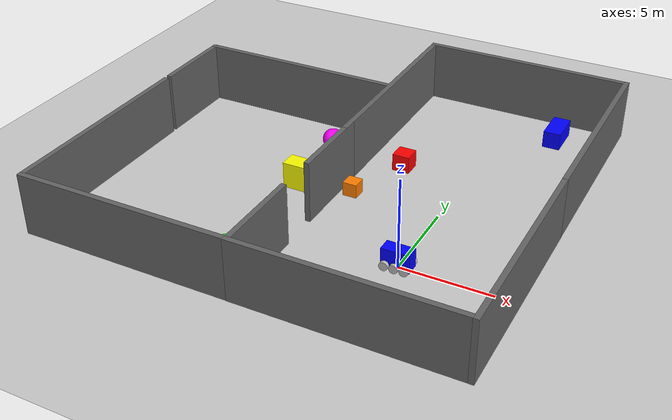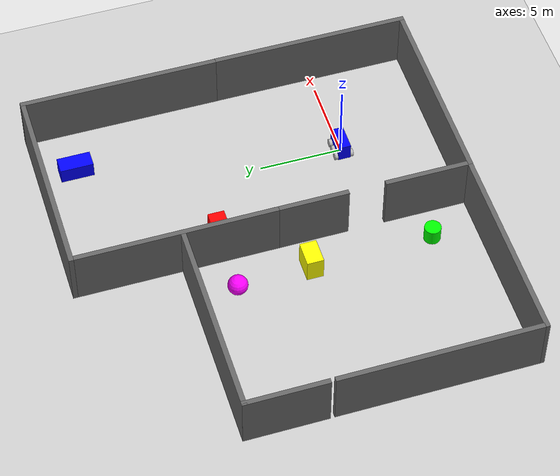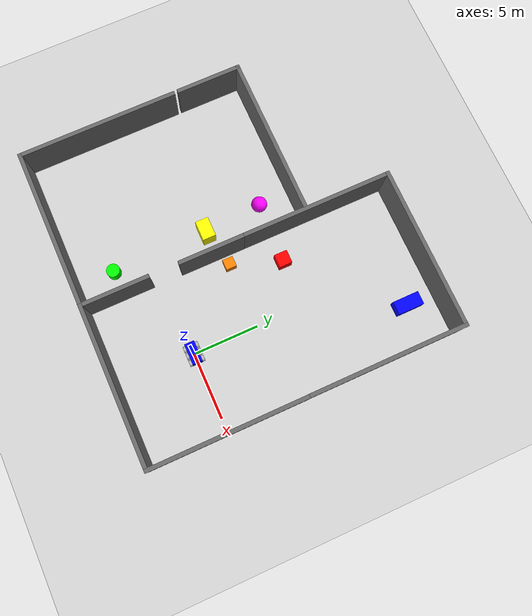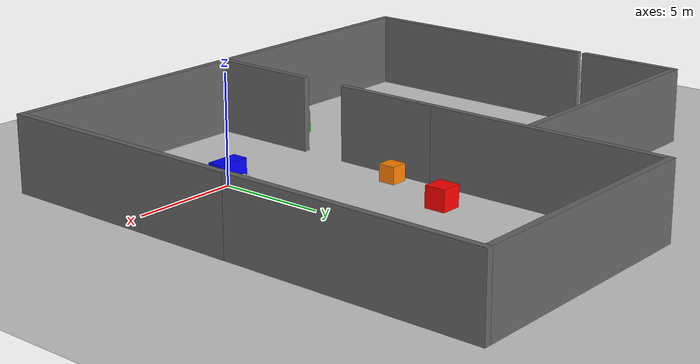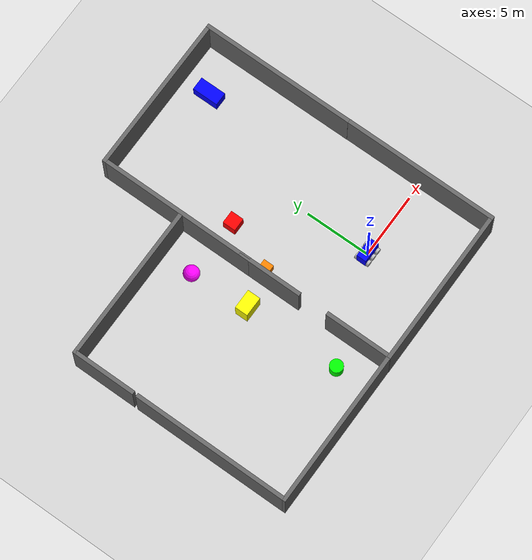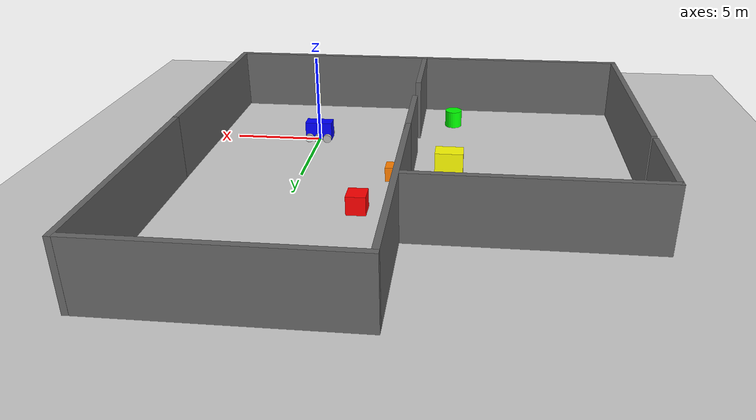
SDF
<sdf version="1.10">
 <world name="room">
  <physics name="1ms" type="ignored">
   <max_step_size>0.001</max_step_size>
   <real_time_factor>1.0</real_time_factor>
  </physics>
  <plugin filename="gz-sim-physics-system" name="gz::sim::systems::Physics"/>
  <plugin filename="gz-sim-user-commands-system" name="gz::sim::systems::UserCommands"/>
  <plugin filename="gz-sim-scene-broadcaster-system" name="gz::sim::systems::SceneBroadcaster"/>
  <plugin filename="gz-sim-imu-system" name="gz::sim::systems::Imu"/>
  <plugin filename="gz-sim-sensors-system" name="gz::sim::systems::Sensors">
   <render_engine>ogre2</render_engine>
  </plugin>
  <light type="directional" name="sun">
   <pose>0 0 10 0 0 0</pose>
   <diffuse>0.8 0.8 0.8 1</diffuse>
   <specular>0.2 0.2 0.2 1</specular>
   <attenuation>
    <range>1000</range>
    <constant>0.9</constant>
    <linear>0.01</linear>
    <quadratic>0.001</quadratic>
   </attenuation>
   <direction>-0.5 0.1 -0.9</direction>
  </light>
  <model name="ground_plane">
   <static>true</static>
   <link name="link">
    <collision name="collision"><geometry><plane><normal>0 0 1</normal></plane></geometry></collision>
    <visual name="visual">
     <geometry><plane><normal>0 0 1</normal><size>100 100</size></plane></geometry>
     <material>
      <ambient>0.8 0.8 0.8 1</ambient>
      <diffuse>0.8 0.8 0.8 1</diffuse>
      <specular>0.8 0.8 0.8 1</specular>
     </material>
    </visual>
   </link>
  </model>
  <model name="FLIP" canonical_link="chassis">
   <link name="chassis">
    <pose relative_to="__model__">0 0 0.625 0 0 0</pose>
    <inertial>
     <mass>450.0</mass>
     <inertia><ixx>62.438</ixx><ixy>0</ixy><ixz>0</ixz><iyy>131.438</iyy><iyz>0</iyz><izz>111.188</izz></inertia>
    </inertial>
    <visual name="visual">
     <geometry><box><size>1.55 0.75 1.05</size></box></geometry>
     <material>
      <ambient>0.0 0.0 1.0 1</ambient>
      <diffuse>0.0 0.0 1.0 1</diffuse>
      <specular>0.0 0.0 1.0 1</specular>
     </material>
    </visual>
    <collision name="collision"><geometry><box><size>1.55 0.75 1.05</size></box></geometry></collision>
   </link>
   <link name="lidar_link">
    <pose relative_to="chassis">0.6 0 0.3 0 0 0</pose>
    <inertial>
     <mass>0.1</mass>
     <inertia>
      <ixx>0.000166</ixx>
      <ixy>0</ixy>
      <ixz>0</ixz>
      <iyy>0.000166</iyy>
      <iyz>0</iyz>
      <izz>0.000166</izz>
     </inertia>
    </inertial>
    <visual name="visual">
     <geometry><cylinder><radius>0.15</radius><length>0.08</length></cylinder></geometry>
     <material><ambient>1 0.0 0.0 1</ambient><diffuse>1.0 0.0 0.0 1</diffuse></material>
    </visual>
    <collision name="collision">
     <geometry><cylinder><radius>0.05</radius><length>0.08</length></cylinder></geometry>
    </collision>
    <sensor name="gpu_lidar" type="gpu_lidar">
     <always_on>1</always_on>
     <update_rate>20</update_rate>
     <lidar>
      <scan>
       <horizontal>
        <samples>320</samples>
        <resolution>1</resolution>
        <min_angle>-3.14159</min_angle>
        <max_angle>3.14159</max_angle>
       </horizontal>
       <vertical>
        <samples>64</samples>
        <resolution>1</resolution>
        <min_angle>-0.610865</min_angle>
        <max_angle>0.610865</max_angle>
       </vertical>
      </scan>
      <range><min>0.08</min><max>10.0</max><resolution>0.01</resolution></range>
     </lidar>
     <visualize>true</visualize>
     <topic>lidar</topic>
    </sensor>
   </link>
   <joint name="lidar_joint" type="fixed"><parent>chassis</parent><child>lidar_link</child></joint>
   <link name="imu_link">
    <pose relative_to="chassis">0 0 0 0 0 0</pose>
    <inertial>
     <mass>0.01</mass>
     <inertia>
      <ixx>0.000001</ixx>
      <ixy>0</ixy>
      <ixz>0</ixz>
      <iyy>0.000001</iyy>
      <iyz>0</iyz>
      <izz>0.000001</izz>
     </inertia>
    </inertial>
    <sensor name="imu_sensor" type="imu">
     <always_on>1</always_on>
     <update_rate>20</update_rate>
     <visualize>true</visualize>
     <topic>imu</topic>
    </sensor>
   </link>
   <joint name="imu_joint" type="fixed"><parent>chassis</parent><child>imu_link</child></joint>
   <link name="left_back_wheel">
    <pose relative_to="chassis">-0.533 0.475 -0.383 -1.5707 0 0</pose>
    <inertial>
     <mass>5</mass>
     <inertia><ixx>0.694</ixx><ixy>0</ixy><ixz>0</ixz><iyy>1.460</iyy><iyz>0</iyz><izz>1.235</izz></inertia>
    </inertial>
    <visual name="visual">
     <geometry><cylinder><radius>0.242</radius><length>0.2</length></cylinder></geometry>
    </visual>
    <collision name="collision">
     <geometry><cylinder><radius>0.242</radius><length>0.2</length></cylinder></geometry>
    </collision>
   </link>
   <link name="left_middle_wheel">
    <pose relative_to="chassis">0 0.475 -0.383 -1.5707 0 0</pose>
    <inertial>
     <mass>5</mass>
     <inertia><ixx>0.694</ixx><ixy>0</ixy><ixz>0</ixz><iyy>1.460</iyy><iyz>0</iyz><izz>1.235</izz></inertia>
    </inertial>
    <visual name="visual">
     <geometry><cylinder><radius>0.242</radius><length>0.2</length></cylinder></geometry>
    </visual>
    <collision name="collision">
     <geometry><cylinder><radius>0.242</radius><length>0.2</length></cylinder></geometry>
    </collision>
   </link>
   <link name="right_back_wheel">
    <pose relative_to="chassis">-0.533 -0.475 -0.383 -1.5707 0 0</pose>
    <inertial>
     <mass>5</mass>
     <inertia><ixx>0.694</ixx><ixy>0</ixy><ixz>0</ixz><iyy>1.460</iyy><iyz>0</iyz><izz>1.235</izz></inertia>
    </inertial>
    <visual name="visual">
     <geometry><cylinder><radius>0.242</radius><length>0.2</length></cylinder></geometry>
    </visual>
    <collision name="collision">
     <geometry><cylinder><radius>0.242</radius><length>0.2</length></cylinder></geometry>
    </collision>
   </link>
   <link name="right_middle_wheel">
    <pose relative_to="chassis">0 -0.475 -0.383 -1.5707 0 0</pose>
    <inertial>
     <mass>5</mass>
     <inertia><ixx>0.694</ixx><ixy>0</ixy><ixz>0</ixz><iyy>1.460</iyy><iyz>0</iyz><izz>1.235</izz></inertia>
    </inertial>
    <visual name="visual">
     <geometry><cylinder><radius>0.242</radius><length>0.2</length></cylinder></geometry>
    </visual>
    <collision name="collision">
     <geometry><cylinder><radius>0.242</radius><length>0.2</length></cylinder></geometry>
    </collision>
   </link>
   <link name="left_front_steer_link">
    <pose relative_to="chassis">0.533 0.475 -0.383 0 0 0</pose>
    <inertial>
     <mass>1.0</mass>
     <inertia><ixx>0.01</ixx><ixy>0</ixy><ixz>0</ixz><iyy>0.01</iyy><iyz>0</iyz><izz>0.01</izz></inertia>
    </inertial>
   </link>
   <link name="right_front_steer_link">
    <pose relative_to="chassis">0.533 -0.475 -0.383 0 0 0</pose>
    <inertial>
     <mass>1.0</mass>
     <inertia><ixx>0.01</ixx><ixy>0</ixy><ixz>0</ixz><iyy>0.01</iyy><iyz>0</iyz><izz>0.01</izz></inertia>
    </inertial>
   </link>
   <link name="left_front_wheel">
    <pose relative_to="left_front_steer_link">0 0 0 -1.5707 0 0</pose>
    <inertial>
     <mass>5</mass>
     <inertia><ixx>0.694</ixx><ixy>0</ixy><ixz>0</ixz><iyy>1.460</iyy><iyz>0</iyz><izz>1.235</izz></inertia>
    </inertial>
    <visual name="visual">
     <geometry><cylinder><radius>0.242</radius><length>0.2</length></cylinder></geometry>
    </visual>
    <collision name="collision">
     <geometry><cylinder><radius>0.242</radius><length>0.2</length></cylinder></geometry>
    </collision>
   </link>
   <link name="right_front_wheel">
    <pose relative_to="right_front_steer_link">0 0 0 -1.5707 0 0</pose>
    <inertial>
     <mass>5</mass>
     <inertia><ixx>0.694</ixx><ixy>0</ixy><ixz>0</ixz><iyy>1.460</iyy><iyz>0</iyz><izz>1.235</izz></inertia>
    </inertial>
    <visual name="visual">
     <geometry><cylinder><radius>0.242</radius><length>0.2</length></cylinder></geometry>
    </visual>
    <collision name="collision">
     <geometry><cylinder><radius>0.242</radius><length>0.2</length></cylinder></geometry>
    </collision>
   </link>
   <joint name="left_front_wheel_joint" type="revolute">
    <parent>chassis</parent>
    <child>left_front_wheel</child>
    <axis><xyz>0 0 1</xyz></axis>
   </joint>
   <joint name="left_middle_wheel_joint" type="revolute">
    <parent>chassis</parent>
    <child>left_middle_wheel</child>
    <axis><xyz>0 0 1</xyz></axis>
   </joint>
   <joint name="left_back_wheel_joint" type="revolute">
    <parent>chassis</parent>
    <child>left_back_wheel</child>
    <axis><xyz>0 0 1</xyz></axis>
   </joint>
   <joint name="right_front_wheel_joint" type="revolute">
    <parent>chassis</parent>
    <child>right_front_wheel</child>
    <axis><xyz>0 0 1</xyz></axis>
   </joint>
   <joint name="right_middle_wheel_joint" type="revolute">
    <parent>chassis</parent>
    <child>right_middle_wheel</child>
    <axis><xyz>0 0 1</xyz></axis>
   </joint>
   <joint name="right_back_wheel_joint" type="revolute">
    <parent>chassis</parent>
    <child>right_back_wheel</child>
    <axis><xyz>0 0 1</xyz></axis>
   </joint>
   <plugin filename="gz-sim-diff-drive-system" name="gz::sim::systems::DiffDrive">
    <left_joint>left_back_wheel_joint</left_joint>
    <left_joint>left_middle_wheel_joint</left_joint>
    <left_joint>left_front_wheel_joint</left_joint>
    <right_joint>right_back_wheel_joint</right_joint>
    <right_joint>right_middle_wheel_joint</right_joint>
    <right_joint>right_front_wheel_joint</right_joint>
    <wheel_separation>0.95</wheel_separation>
    <wheel_radius>0.242</wheel_radius>
    <topic>/model/FLIP/cmd_vel</topic>
    <odom_topic>/model/FLIP/odometry</odom_topic>
    <tf_topic>/model/FLIP/tf</tf_topic>
    <frame_id>odom</frame_id>
    <child_frame_id>chassis</child_frame_id>
   </plugin>
   <plugin filename="gz-sim-triggered-publisher-system" name="gz::sim::systems::TriggeredPublisher">
    <input type="gz.msgs.Int32" topic="/keyboard/keypress"><match field="data">16777235</match></input>
    <output type="gz.msgs.Twist" topic="/model/FLIP/cmd_vel">linear: {x: 1.0}, angular: {z: 0.0}</output>
   </plugin>
   <plugin filename="gz-sim-triggered-publisher-system" name="gz::sim::systems::TriggeredPublisher">
    <input type="gz.msgs.Int32" topic="/keyboard/keypress"><match field="data">16777237</match></input>
    <output type="gz.msgs.Twist" topic="/model/FLIP/cmd_vel">linear: {x: -1.0}, angular: {z: 0.0}</output>
   </plugin>
   <plugin filename="gz-sim-triggered-publisher-system" name="gz::sim::systems::TriggeredPublisher">
    <input type="gz.msgs.Int32" topic="/keyboard/keypress"><match field="data">16777234</match></input>
    <output type="gz.msgs.Twist" topic="/model/FLIP/cmd_vel">linear: {x: 0.0}, angular: {z: 1.0}</output>
   </plugin>
   <plugin filename="gz-sim-triggered-publisher-system" name="gz::sim::systems::TriggeredPublisher">
    <input type="gz.msgs.Int32" topic="/keyboard/keypress"><match field="data">16777236</match></input>
    <output type="gz.msgs.Twist" topic="/model/FLIP/cmd_vel">linear: {x: 0.0}, angular: {z: -1.0}</output>
   </plugin>
  </model>
  <include>
   <uri>file:///workspace/models/gazebo/obstacles/walls/horizontalWall0_3x12x3_5</uri>
   <name>horizontalWallBig</name>
   <pose>6.1378297805786133 0 1.75 0 0 0</pose>
  </include>
  <include>
   <uri>file:///workspace/models/gazebo/obstacles/walls/horizontalWall0_3x12x3_5</uri>
   <name>verticalWallBig</name>
   <pose>7.2243547037942335e-06 -5.8478302955627441 1.75 0 0 1.5708000357176291</pose>
  </include>
  <include>
   <uri>file:///workspace/models/gazebo/obstacles/walls/horizontalWall0_3x5x3_5</uri>
   <name>horizontalWallSmall</name>
   <pose>-5.8479700088500977 -3.2032356262207031 1.75 0 0 0</pose>
  </include>
  <include>
   <uri>file:///workspace/models/gazebo/obstacles/walls/horizontalWall0_3x12x3_5</uri>
   <name>horizontalWallBig_1</name>
   <pose>6.1292400360107422 11.98643970489502 1.75 0 0 0</pose>
  </include>
  <include>
   <uri>file:///workspace/models/gazebo/obstacles/walls/verticalWall0_3x12x3_5</uri>
   <name>verticalWallBig_1</name>
   <pose>0.00072676839772611856 17.835100173950195 1.75 0 0 1.5707999672671711</pose>
  </include>
  <include>
   <uri>file:///workspace/models/gazebo/obstacles/walls/horizontalWall0_3x12x3_5</uri>
   <name>horizontalWallBig_2</name>
   <pose>-5.8510937690734863 11.696800231933594 1.75 0 0 0</pose>
  </include>
  <include>
   <uri>file:///workspace/models/gazebo/obstacles/walls/horizontalWall0_3x5x3_5</uri>
   <name>horizontalWallSmall_2</name>
   <pose>-5.849639892578125 4.0064177513122559 1.75 0 0 0</pose>
  </include>
  <include>
   <uri>file:///workspace/models/gazebo/obstacles/walls/verticalWall0_3x12x3_5</uri>
   <name>verticalWallBig_2</name>
   <pose>-11.975589752197266 -5.8330597877502441 1.75 0 0 1.5707999672671717</pose>
  </include>
  <include>
   <uri>file:///workspace/models/gazebo/obstacles/walls/horizontalWall0_3x12x3_5</uri>
   <name>horizontalWallBig_3</name>
   <pose>-17.832462310791016 0.27177301049232483 1.75 0 0 0</pose>
  </include>
  <include>
   <uri>file:///workspace/models/gazebo/obstacles/walls/horizontalWall0_3x5x3_5</uri>
   <name>horizontalWallSmall_3</name>
   <pose>-17.841299057006836 9.0118703842163086 1.75 0 0 0</pose>
  </include>
  <include>
   <uri>file:///workspace/models/gazebo/obstacles/walls/verticalWall0_3x12x3_5</uri>
   <name>verticalWallBig_3</name>
   <pose>-11.987987518310547 11.363300323486328 1.75 0 0 1.5707999672671717</pose>
  </include>
  <include>
   <uri>file:///workspace/models/gazebo/obstacles/shapes/redCube1x1x1</uri>
   <name>redCube</name>
   <pose>-3.6559658050537109 8.7096595764160156 0.5 0 0 0</pose>
  </include>
  <include>
   <uri>file:///workspace/models/gazebo/obstacles/shapes/greenCylinder0_5x1</uri>
   <name>greenCylinder</name>
   <pose>-7.8899140357971191 -3 0.5 0 0 0</pose>
  </include>
  <include>
   <uri>file:///workspace/models/gazebo/obstacles/shapes/blueBox1x2x1</uri>
   <name>blueBox</name>
   <pose>3 15.608985900878906 0.5 0 0 0</pose>
  </include>
  <include>
   <uri>file:///workspace/models/gazebo/obstacles/shapes/yellowBox1_5x1x1_5</uri>
   <name>yellowBox</name>
   <pose>-7.9256100654602051 4.3805632591247559 0.75 0 0 0</pose>
  </include>
  <include>
   <uri>file:///workspace/models/gazebo/obstacles/shapes/pinkBall0_6</uri>
   <name>pinkBall</name>
   <pose>-8.2594108581542969 8.8796701431274414 0.60000002384185791 0 0 0</pose>
  </include>
  <include>
   <uri>file:///workspace/models/gazebo/obstacles/shapes/orangeBox0_8x0_8x0_8</uri>
   <name>orangeBox</name>
   <pose>-5 5 0.40000000000000002 0 0 0</pose>
  </include>
 </world>
</sdf>

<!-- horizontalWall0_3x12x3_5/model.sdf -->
<sdf version="1.10">
    <model name="horizontalWall0_3x12x3_5">
      <static>true</static>
      <pose>4.2 0 1.75 0 0 0</pose>
      <link name="link">
        <collision name="collision">
          <geometry><box><size>0.3 12.0 3.5</size></box></geometry>
        </collision>
        <visual name="visual">
          <geometry><box><size>0.3 12.0 3.5</size></box></geometry>
          <material>
            <ambient>0.4 0.4 0.4 1</ambient>
            <diffuse>0.4 0.4 0.4 1</diffuse>
            <specular>0.2 0.2 0.2 1</specular>
          </material>
          <plugin
            filename="gz-sim-thermal-system"
            name="gz::sim::systems::Thermal">
            <temperature>292.1</temperature>
            <emissivity>0.9</emissivity>
          </plugin>
        </visual>
      </link>
    </model>
</sdf>

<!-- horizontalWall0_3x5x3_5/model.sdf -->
<sdf version="1.10">
    <model name="horizontalWall0_3x5x3_5">
      <static>true</static>
      <pose>4.2 0 1.75 0 0 0</pose>
      <link name="link">
        <collision name="collision">
          <geometry><box><size>0.3 5.0 3.5</size></box></geometry>
        </collision>
        <visual name="visual">
          <geometry><box><size>0.3 5.0 3.5</size></box></geometry>
          <material>
            <ambient>0.4 0.4 0.4 1</ambient>
            <diffuse>0.4 0.4 0.4 1</diffuse>
            <specular>0.2 0.2 0.2 1</specular>
          </material>
          <plugin
            filename="gz-sim-thermal-system"
            name="gz::sim::systems::Thermal">
            <temperature>292.1</temperature>
            <emissivity>0.9</emissivity>
          </plugin>
        </visual>
      </link>
    </model>
</sdf>

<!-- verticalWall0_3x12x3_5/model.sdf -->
<sdf version="1.10">
    <model name="verticalWall0_3x12x3_5">
      <static>true</static>
      <pose>0 3.9 1.75 0 0 1.5708</pose>
      <link name="link">
        <collision name="collision">
          <geometry><box><size>0.3 12.0 3.5</size></box></geometry>
        </collision>
        <visual name="visual">
          <geometry><box><size>0.3 12.0 3.5</size></box></geometry>
          <material>
            <ambient>0.4 0.4 0.4 1</ambient>
            <diffuse>0.4 0.4 0.4 1</diffuse>
            <specular>0.2 0.2 0.2 1</specular>
          </material>
          <plugin
            filename="gz-sim-thermal-system"
            name="gz::sim::systems::Thermal">
            <temperature>292.1</temperature>
            <emissivity>0.9</emissivity>
          </plugin>
        </visual>
      </link>
    </model>
</sdf>

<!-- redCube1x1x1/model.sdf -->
<sdf version="1.10">
    <model name="redCube1x1x1">
      <static>true</static>
      <pose>3 2 0.5 0 0 0</pose>
      <link name="link">
        <collision name="collision">
          <geometry><box><size>1 1 1</size></box></geometry>
        </collision>
        <visual name="visual">
          <geometry><box><size>1 1 1</size></box></geometry>
          <material>
            <ambient>1 0 0 1</ambient>
            <diffuse>1 0 0 1</diffuse>
            <specular>0.5 0.5 0.5 1</specular>
          </material>
          <plugin
            filename="gz-sim-thermal-system"
            name="gz::sim::systems::Thermal">
            <temperature>373.50</temperature>
            <emissivity>0.9</emissivity>
          </plugin>
        </visual>
      </link>
    </model>
</sdf>

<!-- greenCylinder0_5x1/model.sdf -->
<sdf version="1.10">
    <model name="greenCylinder0_5x1">
      <static>true</static>
      <pose>-2 -3 0.5 0 0 0</pose>
      <link name="link">
        <temperature>120.0</temperature>
        <collision name="collision">
          <geometry><cylinder><radius>0.5</radius><length>1.0</length></cylinder></geometry>
        </collision>
        <visual name="visual">
          <geometry><cylinder><radius>0.5</radius><length>1.0</length></cylinder></geometry>
          <material>
            <ambient>0 1 0 1</ambient>
            <diffuse>0 1 0 1</diffuse>
          </material>
        <plugin
          filename="gz-sim-thermal-system"
          name="gz::sim::systems::Thermal">
          <temperature>340</temperature>
          <emissivity>0.9</emissivity>
        </plugin>
        </visual>
      </link>
    </model>
</sdf>

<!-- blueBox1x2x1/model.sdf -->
<sdf version="1.10">
    <model name="blueBox1x2x1">
      <static>true</static>
      <pose>3 -2 0.5 0 0 0</pose>
      <link name="link">
        <temperature>300.0</temperature>
        <collision name="collision">
          <geometry><box><size>1 2 1</size></box></geometry>
        </collision>
        <visual name="visual">
          <geometry><box><size>1 2 1</size></box></geometry>
          <material>
            <ambient>0 0 1 1</ambient>
            <diffuse>0 0 1 1</diffuse>
          </material>
          <plugin
            filename="gz-sim-thermal-system"
            name="gz::sim::systems::Thermal">
            <temperature>343.15</temperature>
          </plugin>
        </visual>
      </link>
    </model>
</sdf>

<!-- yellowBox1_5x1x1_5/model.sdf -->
<sdf version="1.10">
    <model name="yellowBox1_5x1x1_5">
      <static>true</static>
      <pose>-3 2 0.75 0 0 0</pose>
      <link name="link">
        <temperature>200.0</temperature>
        <collision name="collision">
          <geometry><box><size>1.5 1 1.5</size></box></geometry>
        </collision>
        <visual name="visual">
          <geometry><box><size>1.5 1 1.5</size></box></geometry>
          <material>
            <ambient>1 1 0 1</ambient>
            <diffuse>1 1 0 1</diffuse>
          </material>
          <plugin
            filename="gz-sim-thermal-system"
            name="gz::sim::systems::Thermal">
            <temperature>325</temperature>
            <emissivity>0.9</emissivity>
          </plugin>
        </visual>
      </link>
    </model>
</sdf>

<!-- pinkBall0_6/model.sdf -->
<sdf version="1.10">
    <model name="pinkBall0_6">
      <static>true</static>
      <pose>1 3 0.6 0 0 0</pose>
      <link name="link">
        <temperature>600.0</temperature>
        <collision name="collision">
          <geometry><sphere><radius>0.6</radius></sphere></geometry>
        </collision>
        <visual name="visual">
          <geometry><sphere><radius>0.6</radius></sphere></geometry>
          <material>
            <ambient>1 0 1 1</ambient>
            <diffuse>1 0 1 1</diffuse>
          </material>
          <plugin
            filename="gz-sim-thermal-system"
            name="gz::sim::systems::Thermal">
            <temperature>313.55</temperature>
            <emissivity>0.9</emissivity>
          </plugin>
        </visual>
      </link>
    </model>
</sdf>

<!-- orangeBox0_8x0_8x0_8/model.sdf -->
<sdf version="1.10">
<model name="orangeBox0_8x0_8x0_8">
  <static>true</static>
  <pose>-2 0 0.4 0 0 0</pose>
  <link name="link">

    <collision name="collision">
      <geometry>
        <box>
          <size>0.8 0.8 0.8</size>
        </box>
      </geometry>
    </collision>

    <!-- Orange box visual -->
    <visual name="visual">
      <geometry>
        <box>
          <size>0.8 0.8 0.8</size>
        </box>
      </geometry>
      <material>
        <ambient>1 0.5 0 1</ambient>
        <diffuse>1 0.5 0 1</diffuse>
      </material>
      <plugin
        filename="gz-sim-thermal-system"
        name="gz::sim::systems::Thermal">
        <temperature>513.15</temperature>
        <emissivity>0.9</emissivity>
      </plugin>
    </visual>

    <!-- Thermal core visual -->
    <visual name="thermal_core">
      <pose>0 0 0.25 1.5708 0 0</pose>
      <geometry>
        <sphere>
          <radius>0.08</radius>
        </sphere>
      </geometry>
      <material>
        <ambient>1 0.4 0 1</ambient>
        <diffuse>1 0.4 0 1</diffuse>
      </material>
      <plugin
        filename="gz-sim-thermal-system"
        name="gz::sim::systems::Thermal">
        <temperature>583.83</temperature>
        <emissivity>0.9</emissivity>
      </plugin>
    </visual>

    <!-- 3. CLEANED PARTICLE EMITTER: Removed invalid nested tags for Ionic -->
    <particle_emitter name="fire" type="box">
      <pose>0 0 0.25 1.5708 0 0</pose>
      <size>0.15 0.15 0.30</size>
      <rate>50</rate>
      <particle_size>0.05 0.05 0.05</particle_size>
      <lifetime>1</lifetime>
      <!-- Simplified for Ionic stability -->
      <min_velocity>2.5</min_velocity>
      <max_velocity>3.5</max_velocity>
      <color_start>0.6 0 0 0</color_start>
      <color_end>1 0.8 0.2 1</color_end>
      <scale_rate>0.4</scale_rate>
      <emitting>true</emitting>
    </particle_emitter>

  </link>
</model>
</sdf>
